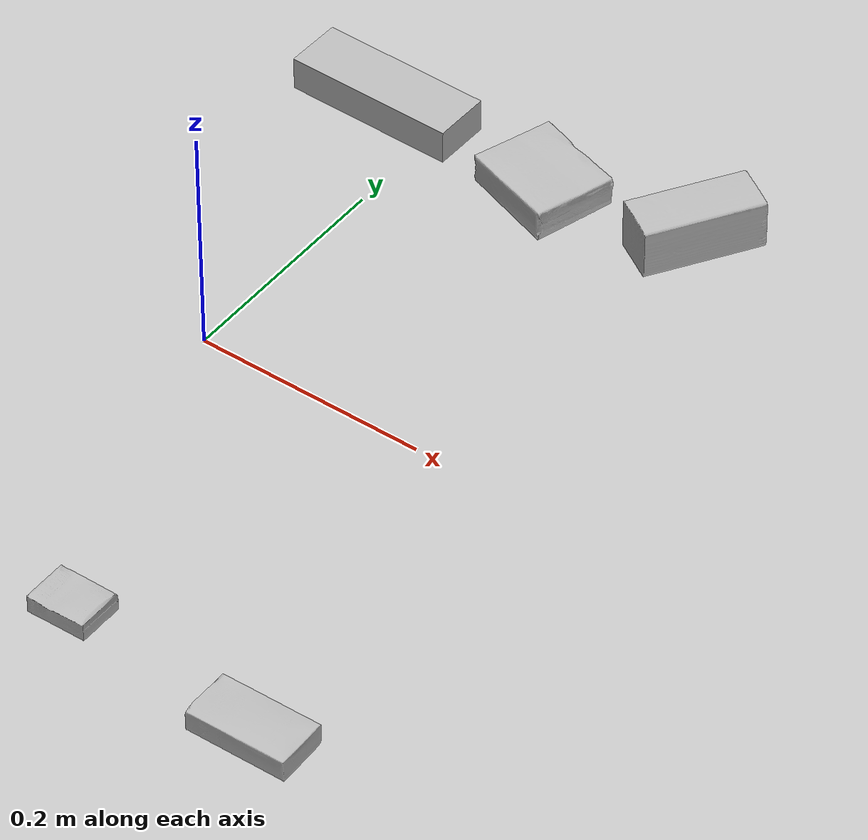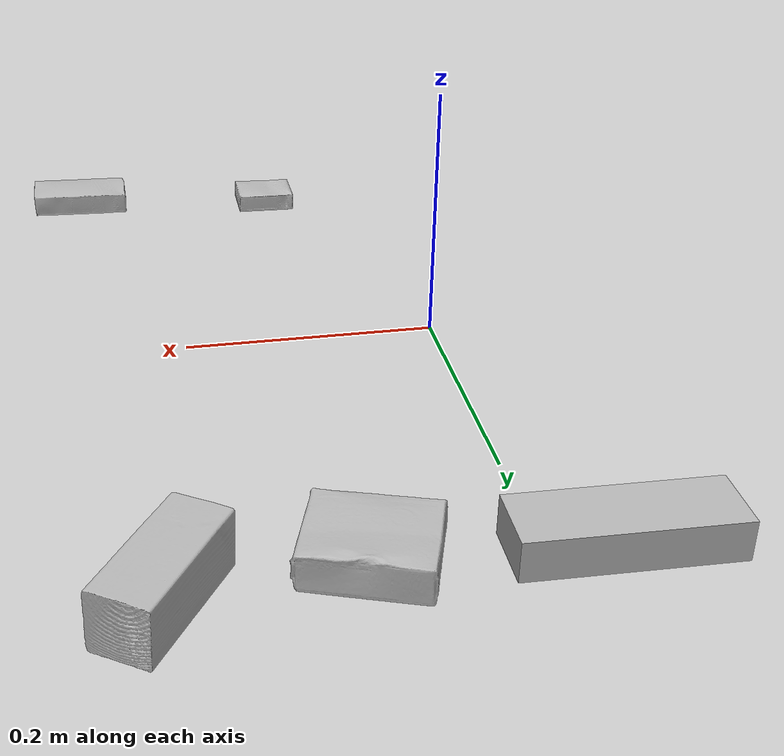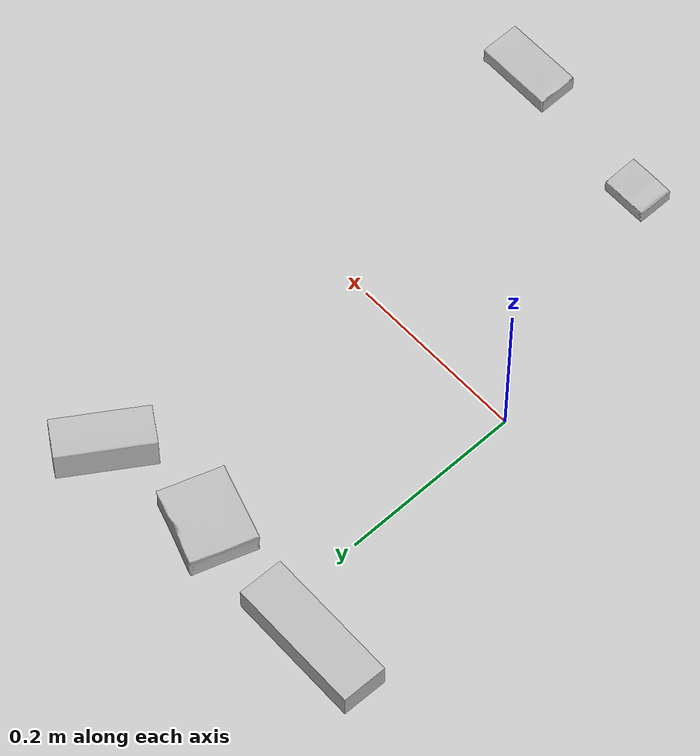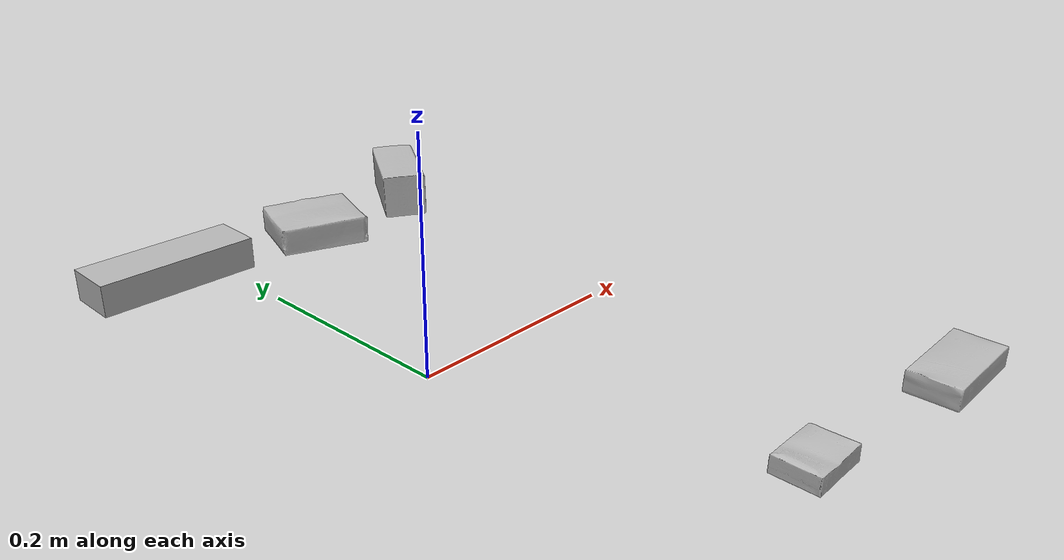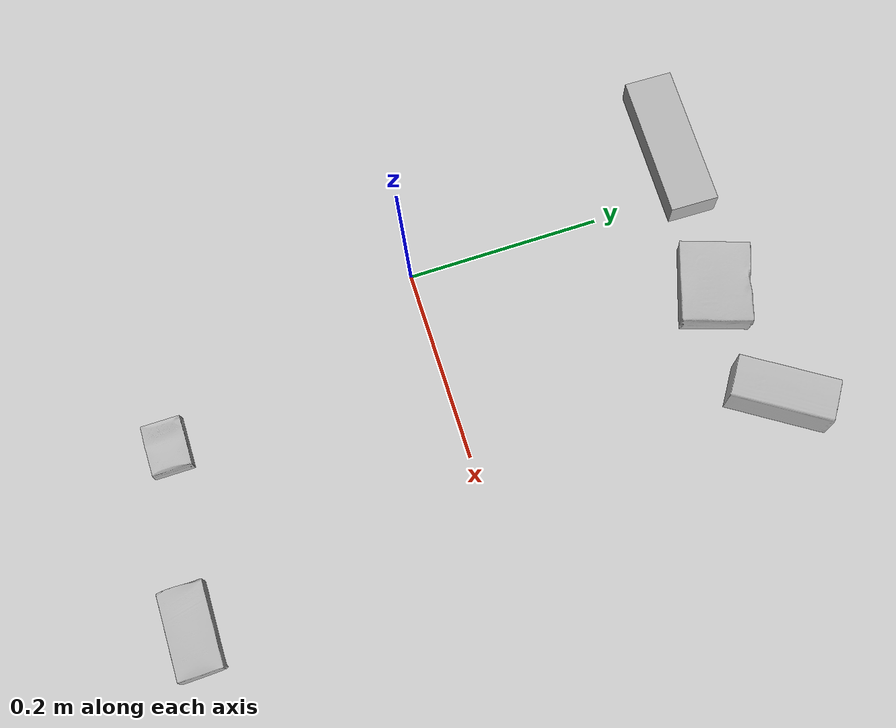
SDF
<?xml version="1.0" ?>
<sdf version="1.4">
  <world name="default">
    <light name="light1" type="point">
      <pose>0 0 1 0 0 0</pose>
      <diffuse>3 3 3 1</diffuse>
      <specular>3 3 3 1</specular>
    </light>
    <light name="light2" type="point">
      <pose>0 0.5 2 0 0 0</pose>
      <diffuse>1 1 1 1</diffuse>
      <specular>1 1 1 1</specular>
    </light>
    <light name="light3" type="point">
      <pose>0 0.5 2 0 0 0</pose>
      <diffuse>3 3 3 1</diffuse>
      <specular>3 3 3 1</specular>
    </light>
    <scene>
      <ambient>0.7 0.7 0.7</ambient>
    </scene>
    <model name="box1">
      <link name="link_box1">
        <collision name="default">
          <geometry>
            <mesh>
              <uri>model://sugar_box/collision_meshes/collision.obj</uri>
              <scale>0.5 0.5 0.5</scale>
            </mesh>
          </geometry>
          <surface>
            <friction>
              <ode>
                <mu>0.5</mu>
                <mu2>0.5</mu2>
              </ode>
            </friction>
          </surface>
        </collision>
        <visual name="default">
          <geometry>
            <mesh>
              <uri>model://sugar_box/visual_meshes/visual.dae</uri>
              <scale>0.5 0.5 0.5</scale>
            </mesh>
          </geometry>
        </visual>
        <inertial>
          <mass>0.07249404489994049</mass>
          <pose>0.0005171863012947142 1.924554817378521e-05 -0.00018182402709499002 -0.00040462618385709627 0.0010506635220579009 0.0026153790218148127</pose>
          <inertia>
            <ixx>1.5100456e-05</ixx>
            <iyy>4.8807786e-05</iyy>
            <izz>5.842874e-05</izz>
            <ixy>0</ixy>
            <ixz>0</ixz>
            <iyz>0</iyz>
          </inertia>
        </inertial>
      </link>
      <pose>0.2795228362083435 -0.30013349652290344 0.011399304494261742 0.0007748735326219792 -0.023433156002726628 0.00023442614891992664</pose>
    </model>
    <model name="box2">
      <link name="link_box2">
        <collision name="default">
          <geometry>
            <mesh>
              <uri>model://cracker_box/collision_meshes/collision.obj</uri>
              <scale>0.25 0.25 0.25</scale>
            </mesh>
          </geometry>
          <surface>
            <friction>
              <ode>
                <mu>0.5</mu>
                <mu2>0.5</mu2>
              </ode>
            </friction>
          </surface>
        </collision>
        <visual name="default">
          <geometry>
            <mesh>
              <uri>model://cracker_box/visual_meshes/visual.dae</uri>
              <scale>0.25 0.25 0.25</scale>
            </mesh>
          </geometry>
        </visual>
        <inertial>
          <mass>0.019660919904708862</mass>
          <pose>0.00023660410079173744 6.358561222441494e-05 -0.0004257383698131889 -0.00031620756431779875 -0.011106489600602764 0.0025467940703044144</pose>
          <inertia>
            <ixx>3.125538e-06</ixx>
            <iyy>5.1608768e-06</iyy>
            <izz>7.365045e-06</izz>
            <ixy>0</ixy>
            <ixz>0</ixz>
            <iyz>0</iyz>
          </inertia>
        </inertial>
      </link>
      <pose>0.09993372112512589 -0.27984899282455444 0.009120452217757702 -0.011788122260509076 -0.007367102901094442 5.292244390227881e-05</pose>
    </model>
    <model name="box3">
      <link name="link_box3">
        <collision name="default">
          <geometry>
            <mesh>
              <uri>model://wood_block/collision_meshes/collision.obj</uri>
              <scale>0.5 0.5 0.5</scale>
            </mesh>
          </geometry>
          <surface>
            <friction>
              <ode>
                <mu>0.5</mu>
                <mu2>0.5</mu2>
              </ode>
            </friction>
          </surface>
        </collision>
        <visual name="default">
          <geometry>
            <mesh>
              <uri>model://wood_block/visual_meshes/visual.dae</uri>
              <scale>0.5 0.5 0.5</scale>
            </mesh>
          </geometry>
        </visual>
        <inertial>
          <mass>0.22331082820892334</mass>
          <pose>-2.9066577553749084e-06 -0.000285404734313488 0.00013204292918089777 -0.0522110088927385 -0.005192696049127085 -0.006861379582621758</pose>
          <inertia>
            <ixx>7.470592e-05</ixx>
            <iyy>0.00023599603</iyy>
            <izz>0.0002351133</izz>
            <ixy>0</ixy>
            <ixz>0</ixz>
            <iyz>0</iyz>
          </inertia>
        </inertial>
      </link>
      <pose>0.23886944353580475 0.31030771136283875 0.02252763882279396 -0.015779482742661964 -0.00038099901789199705 0.9950362459075587</pose>
    </model>
    <model name="box4">
      <link name="link_box4">
        <collision name="default">
          <geometry>
            <mesh>
              <uri>model://jenga/collision_meshes/collision.obj</uri>
              <scale>1.0 1.0 1.0</scale>
            </mesh>
          </geometry>
          <surface>
            <friction>
              <ode>
                <mu>0.5</mu>
                <mu2>0.5</mu2>
              </ode>
            </friction>
          </surface>
        </collision>
        <visual name="default">
          <geometry>
            <mesh>
              <uri>model://jenga/visual_meshes/visual.dae</uri>
              <scale>1.0 1.0 1.0</scale>
            </mesh>
          </geometry>
        </visual>
        <inertial>
          <mass>0.1217927634716034</mass>
          <pose>-2.502855807051674e-07 -0.00010250010382151231 -4.0923401684267446e-05 0.0 -7.34215461761844e-07 0.0</pose>
          <inertia>
            <ixx>3.370301e-05</ixx>
            <iyy>0.00022837071</iyy>
            <izz>0.00024380515</izz>
            <ixy>0</ixy>
            <ixz>0</ixz>
            <iyz>0</iyz>
          </inertia>
        </inertial>
      </link>
      <pose>-0.04999731853604317 0.30010247230529785 0.014999995008111 2.500074541257645e-09 -3.0746064532724073e-09 -0.021236149043282335</pose>
    </model>
    <model name="box5">
      <link name="link_box5">
        <collision name="default">
          <geometry>
            <mesh>
              <uri>model://gelatin_box/collision_meshes/collision.obj</uri>
              <scale>1.0 1.0 1.0</scale>
            </mesh>
          </geometry>
          <surface>
            <friction>
              <ode>
                <mu>0.5</mu>
                <mu2>0.5</mu2>
              </ode>
            </friction>
          </surface>
        </collision>
        <visual name="default">
          <geometry>
            <mesh>
              <uri>model://gelatin_box/visual_meshes/visual.dae</uri>
              <scale>1.0 1.0 1.0</scale>
            </mesh>
          </geometry>
        </visual>
        <inertial>
          <mass>0.09479870647192001</mass>
          <pose>0.0004319618456065655 0.00011156871914863586 -0.0003640321083366871 -0.0010503720924044775 -0.0047558191559584585 0.01644055760930107</pose>
          <inertia>
            <ixx>6.6920154e-05</ixx>
            <iyy>4.780071e-05</iyy>
            <izz>0.00010186739</izz>
            <ixy>0</ixy>
            <ixz>0</ixz>
            <iyz>0</iyz>
          </inertia>
        </inertial>
      </link>
      <pose>0.11008360236883163 0.28990495204925537 0.01516831386834383 0.005597467418904321 -0.007304593306839688 1.2340334525145078</pose>
    </model>
  </world>
</sdf>
